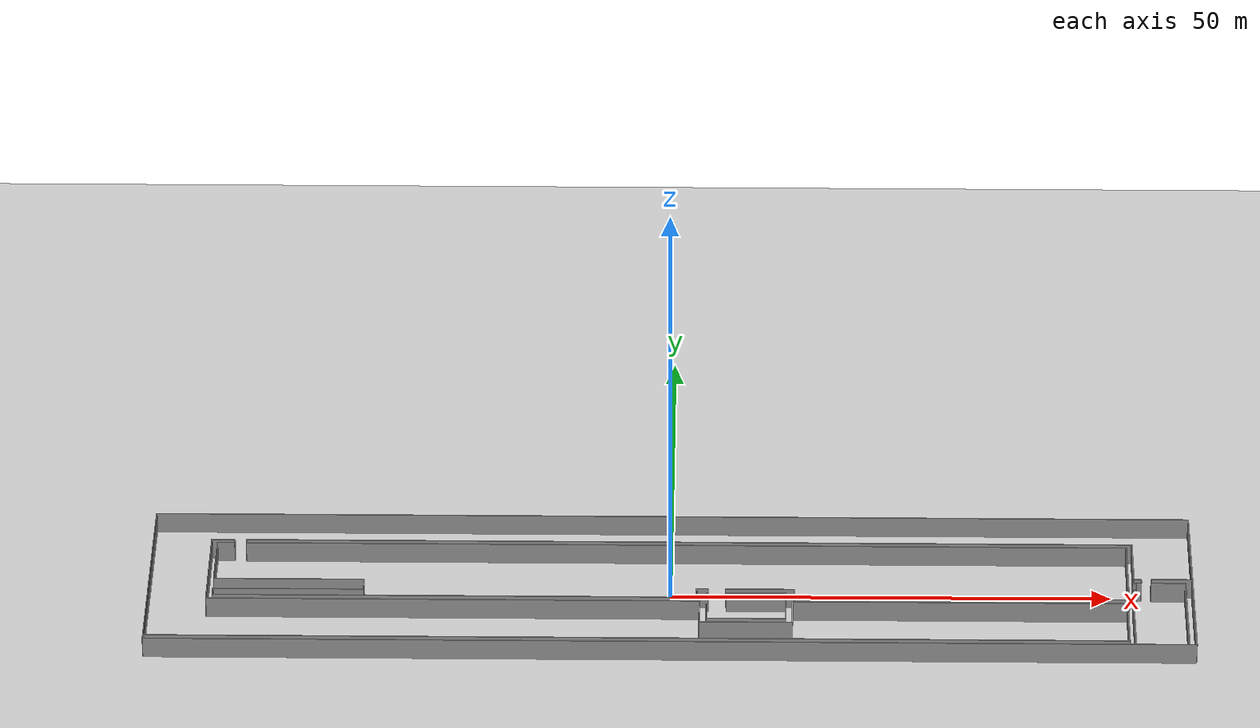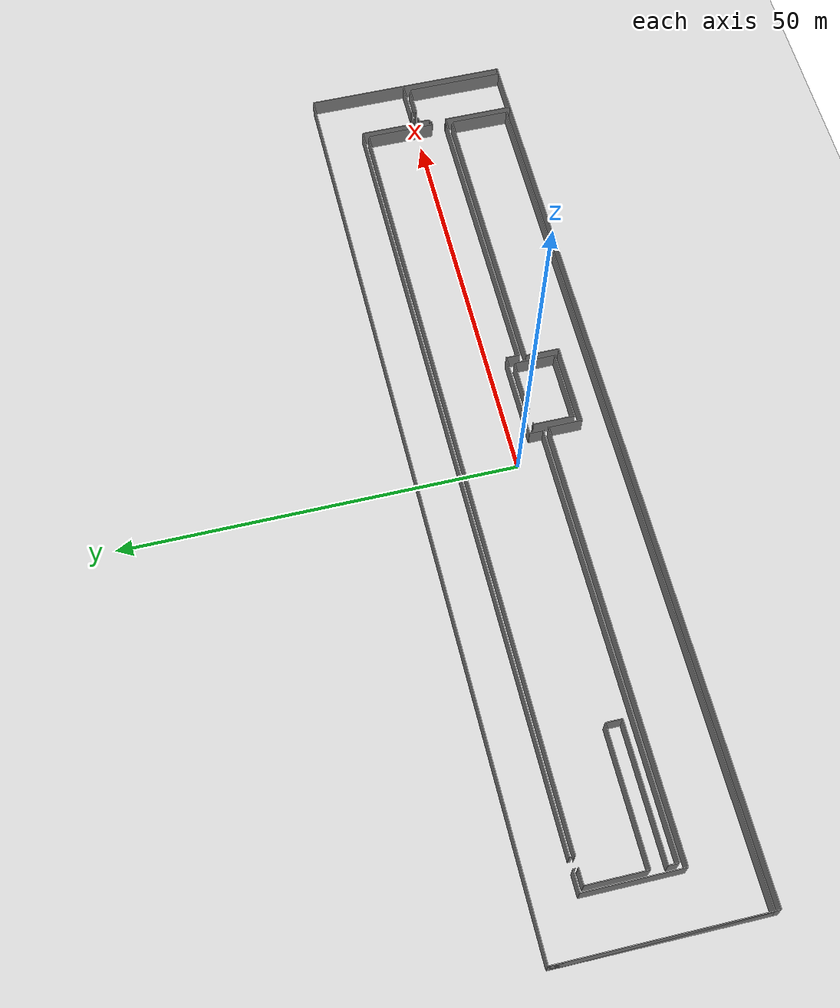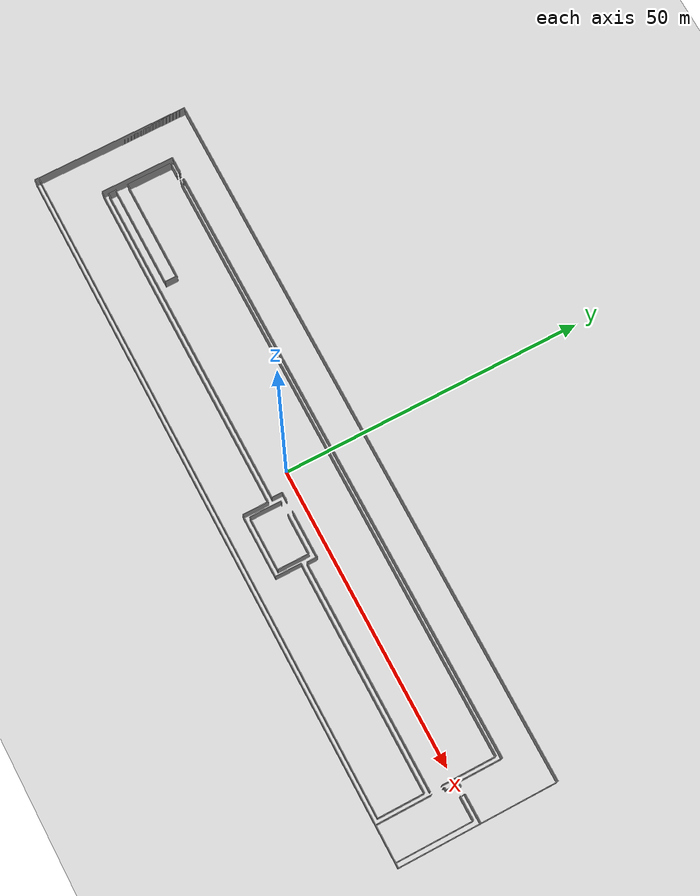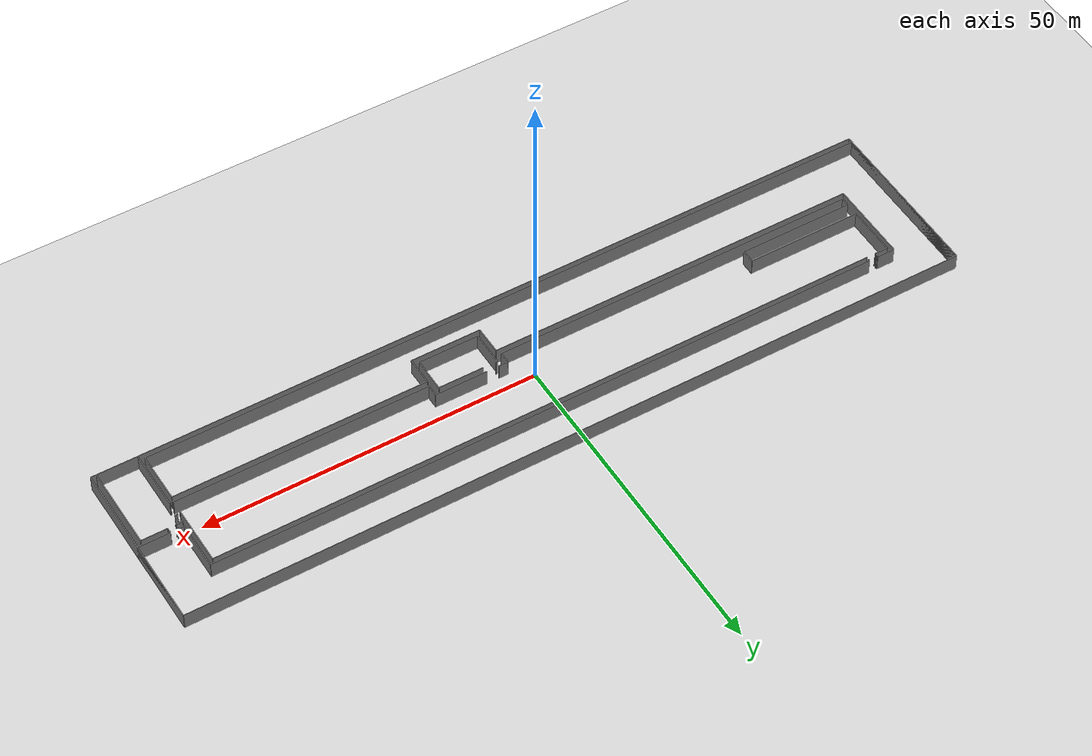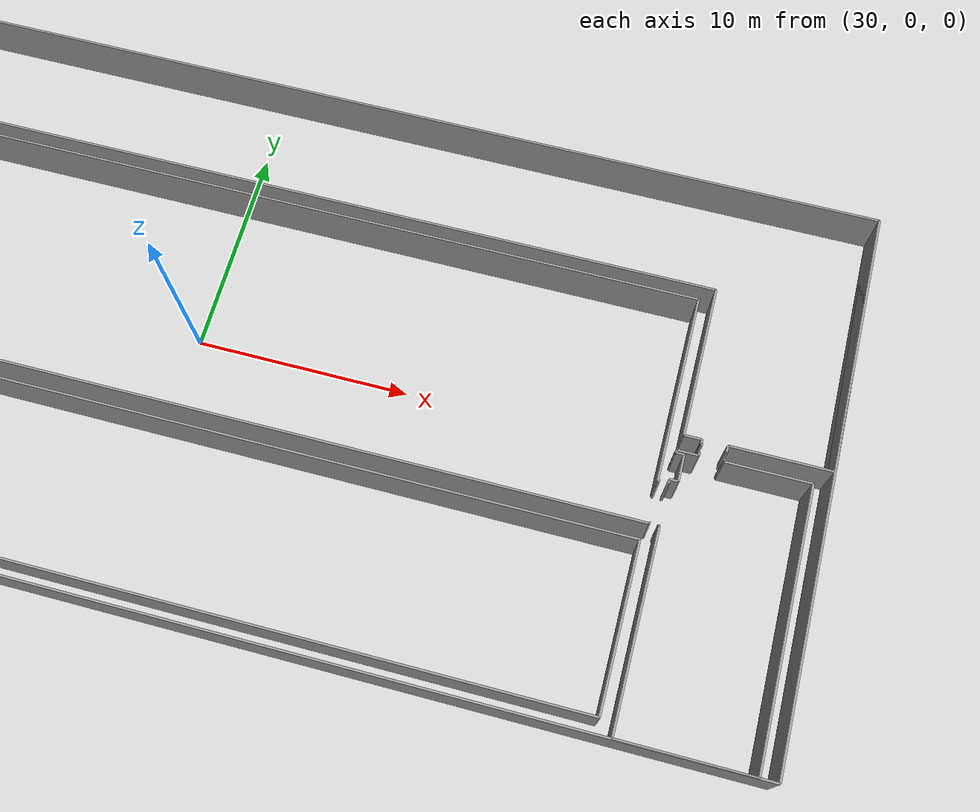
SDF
<sdf version="1.6">
  <world name="default">
    <light name="sun" type="directional">
      <cast_shadows>1</cast_shadows>
      <pose frame="">0 0 10 0 -0 0</pose>
      <diffuse>0.8 0.8 0.8 1</diffuse>
      <specular>0.1 0.1 0.1 1</specular>
      <attenuation>
        <range>1000</range>
        <constant>0.9</constant>
        <linear>0.01</linear>
        <quadratic>0.001</quadratic>
      </attenuation>
      <direction>-0.5 0.5 -1</direction>
    </light>
    <model name="ground_plane">
      <static>1</static>
      <link name="link">
        <collision name="collision">
          <geometry>
            <plane>
              <normal>0 0 1</normal>
              <size>100 100</size>
            </plane>
          </geometry>
          <surface>
            <friction>
              <ode>
                <mu>100</mu>
                <mu2>50</mu2>
              </ode>
              <torsional>
                <ode />
              </torsional>
            </friction>
            <contact>
              <ode />
            </contact>
            <bounce />
          </surface>
          <max_contacts>10</max_contacts>
        </collision>
        <visual name="visual">
          <cast_shadows>0</cast_shadows>
          <geometry>
            <plane>
              <normal>0 0 1</normal>
              <size>100 100</size>
            </plane>
          </geometry>
          <material>
            <script>
              <uri>file://media/materials/scripts/gazebo.material</uri>
              <name>Gazebo/Grey</name>
            </script>
          </material>
        </visual>
        <self_collide>0</self_collide>
        <kinematic>0</kinematic>
        <gravity>1</gravity>
      </link>
    </model>
    <gravity>0 0 -9.8</gravity>
    <magnetic_field>6e-06 2.3e-05 -4.2e-05</magnetic_field>
    <atmosphere type="adiabatic" />
    <physics default="0" name="default_physics" type="ode">
      <max_step_size>0.001</max_step_size>
      <real_time_factor>1</real_time_factor>
      <real_time_update_rate>1000</real_time_update_rate>
    </physics>
    <scene>
      <ambient>0.4 0.4 0.4 1</ambient>
      <background>0.7 0.7 0.7 1</background>
      <shadows>1</shadows>
    </scene>
    <spherical_coordinates>
      <surface_model>EARTH_WGS84</surface_model>
      <latitude_deg>0</latitude_deg>
      <longitude_deg>0</longitude_deg>
      <elevation>0</elevation>
      <heading_deg>0</heading_deg>
    </spherical_coordinates>
  <model name="0510040985_A-40">
		<static>1</static>
		<link name="Wall_0">
			<collision name="Wall_0_Collision">
				<geometry>
					<box>
						<size>5.21940979115 0.1 2.5</size>
					</box>
				</geometry>
				<pose frame="">2.60970489558 0 1.25 0 0 0</pose>
			</collision>
			<visual name="Wall_0_Visual">
				<pose frame="">2.60970489558 0 1.25 0 0 0</pose>
				<geometry>
					<box>
						<size>5.21940979115 0.1 2.5</size>
					</box>
				</geometry>
				<material>
					<script>
						<uri>file://media/materials/scripts/gazebo.material</uri>
						<name>Gazebo/Grey</name>
					</script>
					<ambient>1 1 1 1</ambient>
				</material>
			</visual>
			<pose frame="">63.2506516652 -21.1559366537 0 0 0 1.57079632679</pose>
		</link>
		<link name="Wall_1">
			<collision name="Wall_1_Collision">
				<geometry>
					<box>
						<size>0.26992573237 0.1 2.5</size>
					</box>
				</geometry>
				<pose frame="">0.134962866185 0 1.25 0 0 0</pose>
			</collision>
			<visual name="Wall_1_Visual">
				<pose frame="">0.134962866185 0 1.25 0 0 0</pose>
				<geometry>
					<box>
						<size>0.26992573237 0.1 2.5</size>
					</box>
				</geometry>
				<material>
					<script>
						<uri>file://media/materials/scripts/gazebo.material</uri>
						<name>Gazebo/Grey</name>
					</script>
					<ambient>1 1 1 1</ambient>
				</material>
			</visual>
			<pose frame="">63.2506516652 -15.9365268626 0 0 0 0.0</pose>
		</link>
		<link name="Wall_2">
			<collision name="Wall_2_Collision">
				<geometry>
					<box>
						<size>6.76932639069 0.1 2.5</size>
					</box>
				</geometry>
				<pose frame="">3.38466319535 0 1.25 0 0 0</pose>
			</collision>
			<visual name="Wall_2_Visual">
				<pose frame="">3.38466319535 0 1.25 0 0 0</pose>
				<geometry>
					<box>
						<size>6.76932639069 0.1 2.5</size>
					</box>
				</geometry>
				<material>
					<script>
						<uri>file://media/materials/scripts/gazebo.material</uri>
						<name>Gazebo/Grey</name>
					</script>
					<ambient>1 1 1 1</ambient>
				</material>
			</visual>
			<pose frame="">65.4661229253 -15.9365268626 0 0 0 0.0</pose>
		</link>
		<link name="Wall_3">
			<collision name="Wall_3_Collision">
				<geometry>
					<box>
						<size>5.22359566952 0.1 2.5</size>
					</box>
				</geometry>
				<pose frame="">2.61179783476 0 1.25 0 0 0</pose>
			</collision>
			<visual name="Wall_3_Visual">
				<pose frame="">2.61179783476 0 1.25 0 0 0</pose>
				<geometry>
					<box>
						<size>5.22359566952 0.1 2.5</size>
					</box>
				</geometry>
				<material>
					<script>
						<uri>file://media/materials/scripts/gazebo.material</uri>
						<name>Gazebo/Grey</name>
					</script>
					<ambient>1 1 1 1</ambient>
				</material>
			</visual>
			<pose frame="">72.235449316 -15.9365268626 0 0 0 -1.57079632679</pose>
		</link>
		<link name="Wall_4">
			<collision name="Wall_4_Collision">
				<geometry>
					<box>
						<size>8.9847986259 0.1 2.5</size>
					</box>
				</geometry>
				<pose frame="">4.49239931295 0 1.25 0 0 0</pose>
			</collision>
			<visual name="Wall_4_Visual">
				<pose frame="">4.49239931295 0 1.25 0 0 0</pose>
				<geometry>
					<box>
						<size>8.9847986259 0.1 2.5</size>
					</box>
				</geometry>
				<material>
					<script>
						<uri>file://media/materials/scripts/gazebo.material</uri>
						<name>Gazebo/Grey</name>
					</script>
					<ambient>1 1 1 1</ambient>
				</material>
			</visual>
			<pose frame="">72.235449316 -21.1601225321 0 0 0 3.14112676908</pose>
		</link>
		<link name="Wall_5">
			<collision name="Wall_5_Collision">
				<geometry>
					<box>
						<size>1.26134468171 0.1 2.5</size>
					</box>
				</geometry>
				<pose frame="">0.630672340857 0 1.25 0 0 0</pose>
			</collision>
			<visual name="Wall_5_Visual">
				<pose frame="">0.630672340857 0 1.25 0 0 0</pose>
				<geometry>
					<box>
						<size>1.26134468171 0.1 2.5</size>
					</box>
				</geometry>
				<material>
					<script>
						<uri>file://media/materials/scripts/gazebo.material</uri>
						<name>Gazebo/Grey</name>
					</script>
					<ambient>1 1 1 1</ambient>
				</material>
			</visual>
			<pose frame="">7.31463218179 -16.86287443 0 0 0 1.57079632679</pose>
		</link>
		<link name="Wall_6">
			<collision name="Wall_6_Collision">
				<geometry>
					<box>
						<size>17.07749583 0.1 2.5</size>
					</box>
				</geometry>
				<pose frame="">8.53874791499 0 1.25 0 0 0</pose>
			</collision>
			<visual name="Wall_6_Visual">
				<pose frame="">8.53874791499 0 1.25 0 0 0</pose>
				<geometry>
					<box>
						<size>17.07749583 0.1 2.5</size>
					</box>
				</geometry>
				<material>
					<script>
						<uri>file://media/materials/scripts/gazebo.material</uri>
						<name>Gazebo/Grey</name>
					</script>
					<ambient>1 1 1 1</ambient>
				</material>
			</visual>
			<pose frame="">7.31463218179 -15.6015297483 0 0 0 0.0</pose>
		</link>
		<link name="Wall_7">
			<collision name="Wall_7_Collision">
				<geometry>
					<box>
						<size>2.03141945672 0.1 2.5</size>
					</box>
				</geometry>
				<pose frame="">1.01570972836 0 1.25 0 0 0</pose>
			</collision>
			<visual name="Wall_7_Visual">
				<pose frame="">1.01570972836 0 1.25 0 0 0</pose>
				<geometry>
					<box>
						<size>2.03141945672 0.1 2.5</size>
					</box>
				</geometry>
				<material>
					<script>
						<uri>file://media/materials/scripts/gazebo.material</uri>
						<name>Gazebo/Grey</name>
					</script>
					<ambient>1 1 1 1</ambient>
				</material>
			</visual>
			<pose frame="">24.3921280118 -15.6015297483 0 0 0 1.57079632679</pose>
		</link>
		<link name="Wall_8">
			<collision name="Wall_8_Collision">
				<geometry>
					<box>
						<size>17.0872628795 0.1 2.5</size>
					</box>
				</geometry>
				<pose frame="">8.54363143975 0 1.25 0 0 0</pose>
			</collision>
			<visual name="Wall_8_Visual">
				<pose frame="">8.54363143975 0 1.25 0 0 0</pose>
				<geometry>
					<box>
						<size>17.0872628795 0.1 2.5</size>
					</box>
				</geometry>
				<material>
					<script>
						<uri>file://media/materials/scripts/gazebo.material</uri>
						<name>Gazebo/Grey</name>
					</script>
					<ambient>1 1 1 1</ambient>
				</material>
			</visual>
			<pose frame="">24.3921280118 -13.5701102916 0 0 0 3.14159265359</pose>
		</link>
		<link name="Wall_9">
			<collision name="Wall_9_Collision">
				<geometry>
					<box>
						<size>7.52151604904 0.1 2.5</size>
					</box>
				</geometry>
				<pose frame="">3.76075802452 0 1.25 0 0 0</pose>
			</collision>
			<visual name="Wall_9_Visual">
				<pose frame="">3.76075802452 0 1.25 0 0 0</pose>
				<geometry>
					<box>
						<size>7.52151604904 0.1 2.5</size>
					</box>
				</geometry>
				<material>
					<script>
						<uri>file://media/materials/scripts/gazebo.material</uri>
						<name>Gazebo/Grey</name>
					</script>
					<ambient>1 1 1 1</ambient>
				</material>
			</visual>
			<pose frame="">7.30486513227 -13.5701102916 0 0 0 1.57079632679</pose>
		</link>
		<link name="Wall_10">
			<collision name="Wall_10_Collision">
				<geometry>
					<box>
						<size>1.97230978037 0.1 2.5</size>
					</box>
				</geometry>
				<pose frame="">0.986154890184 0 1.25 0 0 0</pose>
			</collision>
			<visual name="Wall_10_Visual">
				<pose frame="">0.986154890184 0 1.25 0 0 0</pose>
				<geometry>
					<box>
						<size>1.97230978037 0.1 2.5</size>
					</box>
				</geometry>
				<material>
					<script>
						<uri>file://media/materials/scripts/gazebo.material</uri>
						<name>Gazebo/Grey</name>
					</script>
					<ambient>1 1 1 1</ambient>
				</material>
			</visual>
			<pose frame="">7.30486513227 -6.04859424251 0 0 0 0.0</pose>
		</link>
		<link name="Wall_11">
			<collision name="Wall_11_Collision">
				<geometry>
					<box>
						<size>0.0684961914849 0.1 2.5</size>
					</box>
				</geometry>
				<pose frame="">0.0342480957425 0 1.25 0 0 0</pose>
			</collision>
			<visual name="Wall_11_Visual">
				<pose frame="">0.0342480957425 0 1.25 0 0 0</pose>
				<geometry>
					<box>
						<size>0.0684961914849 0.1 2.5</size>
					</box>
				</geometry>
				<material>
					<script>
						<uri>file://media/materials/scripts/gazebo.material</uri>
						<name>Gazebo/Grey</name>
					</script>
					<ambient>1 1 1 1</ambient>
				</material>
			</visual>
			<pose frame="">9.27717491264 -6.04859424251 0 0 0 1.57079632679</pose>
		</link>
		<link name="Wall_12">
			<collision name="Wall_12_Collision">
				<geometry>
					<box>
						<size>0.0777558618153 0.1 2.5</size>
					</box>
				</geometry>
				<pose frame="">0.0388779309076 0 1.25 0 0 0</pose>
			</collision>
			<visual name="Wall_12_Visual">
				<pose frame="">0.0388779309076 0 1.25 0 0 0</pose>
				<geometry>
					<box>
						<size>0.0777558618153 0.1 2.5</size>
					</box>
				</geometry>
				<material>
					<script>
						<uri>file://media/materials/scripts/gazebo.material</uri>
						<name>Gazebo/Grey</name>
					</script>
					<ambient>1 1 1 1</ambient>
				</material>
			</visual>
			<pose frame="">10.6205881793 -5.98009805103 0 0 0 -1.57079632679</pose>
		</link>
		<link name="Wall_13">
			<collision name="Wall_13_Collision">
				<geometry>
					<box>
						<size>100.46412512 0.1 2.5</size>
					</box>
				</geometry>
				<pose frame="">50.2320625599 0 1.25 0 0 0</pose>
			</collision>
			<visual name="Wall_13_Visual">
				<pose frame="">50.2320625599 0 1.25 0 0 0</pose>
				<geometry>
					<box>
						<size>100.46412512 0.1 2.5</size>
					</box>
				</geometry>
				<material>
					<script>
						<uri>file://media/materials/scripts/gazebo.material</uri>
						<name>Gazebo/Grey</name>
					</script>
					<ambient>1 1 1 1</ambient>
				</material>
			</visual>
			<pose frame="">10.6205881793 -6.05785391284 0 0 0 0.0</pose>
		</link>
		<link name="Wall_14">
			<collision name="Wall_14_Collision">
				<geometry>
					<box>
						<size>8.87254000368 0.1 2.5</size>
					</box>
				</geometry>
				<pose frame="">4.43627000184 0 1.25 0 0 0</pose>
			</collision>
			<visual name="Wall_14_Visual">
				<pose frame="">4.43627000184 0 1.25 0 0 0</pose>
				<geometry>
					<box>
						<size>8.87254000368 0.1 2.5</size>
					</box>
				</geometry>
				<material>
					<script>
						<uri>file://media/materials/scripts/gazebo.material</uri>
						<name>Gazebo/Grey</name>
					</script>
					<ambient>1 1 1 1</ambient>
				</material>
			</visual>
			<pose frame="">111.084713299 -6.05785391284 0 0 0 -1.57079632679</pose>
		</link>
		<link name="Wall_15">
			<collision name="Wall_15_Collision">
				<geometry>
					<box>
						<size>0.0928503929018 0.1 2.5</size>
					</box>
				</geometry>
				<pose frame="">0.0464251964509 0 1.25 0 0 0</pose>
			</collision>
			<visual name="Wall_15_Visual">
				<pose frame="">0.0464251964509 0 1.25 0 0 0</pose>
				<geometry>
					<box>
						<size>0.0928503929018 0.1 2.5</size>
					</box>
				</geometry>
				<material>
					<script>
						<uri>file://media/materials/scripts/gazebo.material</uri>
						<name>Gazebo/Grey</name>
					</script>
					<ambient>1 1 1 1</ambient>
				</material>
			</visual>
			<pose frame="">111.084713299 -14.9303939165 0 0 0 0.0</pose>
		</link>
		<link name="Wall_16">
			<collision name="Wall_16_Collision">
				<geometry>
					<box>
						<size>0.0663398299011 0.1 2.5</size>
					</box>
				</geometry>
				<pose frame="">0.0331699149506 0 1.25 0 0 0</pose>
			</collision>
			<visual name="Wall_16_Visual">
				<pose frame="">0.0331699149506 0 1.25 0 0 0</pose>
				<geometry>
					<box>
						<size>0.0663398299011 0.1 2.5</size>
					</box>
				</geometry>
				<material>
					<script>
						<uri>file://media/materials/scripts/gazebo.material</uri>
						<name>Gazebo/Grey</name>
					</script>
					<ambient>1 1 1 1</ambient>
				</material>
			</visual>
			<pose frame="">111.177563692 -16.8404229006 0 0 0 3.14159265359</pose>
		</link>
		<link name="Wall_17">
			<collision name="Wall_17_Collision">
				<geometry>
					<box>
						<size>0.030189062173 0.1 2.5</size>
					</box>
				</geometry>
				<pose frame="">0.0150945310865 0 1.25 0 0 0</pose>
			</collision>
			<visual name="Wall_17_Visual">
				<pose frame="">0.0150945310865 0 1.25 0 0 0</pose>
				<geometry>
					<box>
						<size>0.030189062173 0.1 2.5</size>
					</box>
				</geometry>
				<material>
					<script>
						<uri>file://media/materials/scripts/gazebo.material</uri>
						<name>Gazebo/Grey</name>
					</script>
					<ambient>1 1 1 1</ambient>
				</material>
			</visual>
			<pose frame="">111.111223862 -16.8404229006 0 0 0 -1.57079632679</pose>
		</link>
		<link name="Wall_18">
			<collision name="Wall_18_Collision">
				<geometry>
					<box>
						<size>37.8781402016 0.1 2.5</size>
					</box>
				</geometry>
				<pose frame="">18.9390701008 0 1.25 0 0 0</pose>
			</collision>
			<visual name="Wall_18_Visual">
				<pose frame="">18.9390701008 0 1.25 0 0 0</pose>
				<geometry>
					<box>
						<size>37.8781402016 0.1 2.5</size>
					</box>
				</geometry>
				<material>
					<script>
						<uri>file://media/materials/scripts/gazebo.material</uri>
						<name>Gazebo/Grey</name>
					</script>
					<ambient>1 1 1 1</ambient>
				</material>
			</visual>
			<pose frame="">111.111223862 -16.8706119627 0 0 0 3.14159265359</pose>
		</link>
		<link name="Wall_19">
			<collision name="Wall_19_Collision">
				<geometry>
					<box>
						<size>1.74995084764 0.1 2.5</size>
					</box>
				</geometry>
				<pose frame="">0.87497542382 0 1.25 0 0 0</pose>
			</collision>
			<visual name="Wall_19_Visual">
				<pose frame="">0.87497542382 0 1.25 0 0 0</pose>
				<geometry>
					<box>
						<size>1.74995084764 0.1 2.5</size>
					</box>
				</geometry>
				<material>
					<script>
						<uri>file://media/materials/scripts/gazebo.material</uri>
						<name>Gazebo/Grey</name>
					</script>
					<ambient>1 1 1 1</ambient>
				</material>
			</visual>
			<pose frame="">73.2330836605 -16.8706119627 0 0 0 1.57079632679</pose>
		</link>
		<link name="Wall_20">
			<collision name="Wall_20_Collision">
				<geometry>
					<box>
						<size>7.82886099713 0.1 2.5</size>
					</box>
				</geometry>
				<pose frame="">3.91443049856 0 1.25 0 0 0</pose>
			</collision>
			<visual name="Wall_20_Visual">
				<pose frame="">3.91443049856 0 1.25 0 0 0</pose>
				<geometry>
					<box>
						<size>7.82886099713 0.1 2.5</size>
					</box>
				</geometry>
				<material>
					<script>
						<uri>file://media/materials/scripts/gazebo.material</uri>
						<name>Gazebo/Grey</name>
					</script>
					<ambient>1 1 1 1</ambient>
				</material>
			</visual>
			<pose frame="">73.2330836605 -15.1206611151 0 0 0 3.14159265359</pose>
		</link>
		<link name="Wall_21">
			<collision name="Wall_21_Collision">
				<geometry>
					<box>
						<size>1.39237535913 0.1 2.5</size>
					</box>
				</geometry>
				<pose frame="">0.696187679565 0 1.25 0 0 0</pose>
			</collision>
			<visual name="Wall_21_Visual">
				<pose frame="">0.696187679565 0 1.25 0 0 0</pose>
				<geometry>
					<box>
						<size>1.39237535913 0.1 2.5</size>
					</box>
				</geometry>
				<material>
					<script>
						<uri>file://media/materials/scripts/gazebo.material</uri>
						<name>Gazebo/Grey</name>
					</script>
					<ambient>1 1 1 1</ambient>
				</material>
			</visual>
			<pose frame="">63.5371940662 -15.1206611151 0 0 0 3.14159265359</pose>
		</link>
		<link name="Wall_22">
			<collision name="Wall_22_Collision">
				<geometry>
					<box>
						<size>1.74094486691 0.1 2.5</size>
					</box>
				</geometry>
				<pose frame="">0.870472433454 0 1.25 0 0 0</pose>
			</collision>
			<visual name="Wall_22_Visual">
				<pose frame="">0.870472433454 0 1.25 0 0 0</pose>
				<geometry>
					<box>
						<size>1.74094486691 0.1 2.5</size>
					</box>
				</geometry>
				<material>
					<script>
						<uri>file://media/materials/scripts/gazebo.material</uri>
						<name>Gazebo/Grey</name>
					</script>
					<ambient>1 1 1 1</ambient>
				</material>
			</visual>
			<pose frame="">62.1448187071 -15.1206611151 0 0 0 -1.57079632679</pose>
		</link>
		<link name="Wall_23">
			<collision name="Wall_23_Collision">
				<geometry>
					<box>
						<size>54.8301865399 0.1 2.5</size>
					</box>
				</geometry>
				<pose frame="">27.41509327 0 1.25 0 0 0</pose>
			</collision>
			<visual name="Wall_23_Visual">
				<pose frame="">27.41509327 0 1.25 0 0 0</pose>
				<geometry>
					<box>
						<size>54.8301865399 0.1 2.5</size>
					</box>
				</geometry>
				<material>
					<script>
						<uri>file://media/materials/scripts/gazebo.material</uri>
						<name>Gazebo/Grey</name>
					</script>
					<ambient>1 1 1 1</ambient>
				</material>
			</visual>
			<pose frame="">62.1448187071 -16.861605982 0 0 0 -3.14156951947</pose>
		</link>
		<link name="Wall_24">
			<collision name="Wall_24_Collision">
				<geometry>
					<box>
						<size>9.08411712849 0.1 2.5</size>
					</box>
				</geometry>
				<pose frame="">4.54205856424 0 1.25 0 0 0</pose>
			</collision>
			<visual name="Wall_24_Visual">
				<pose frame="">4.54205856424 0 1.25 0 0 0</pose>
				<geometry>
					<box>
						<size>9.08411712849 0.1 2.5</size>
					</box>
				</geometry>
				<material>
					<script>
						<uri>file://media/materials/scripts/gazebo.material</uri>
						<name>Gazebo/Grey</name>
					</script>
					<ambient>1 1 1 1</ambient>
				</material>
			</visual>
			<pose frame="">111.57978855 -25.9497821441 0 0 0 1.57079632679</pose>
		</link>
		<link name="Wall_25">
			<collision name="Wall_25_Collision">
				<geometry>
					<box>
						<size>0.0912014105142 0.1 2.5</size>
					</box>
				</geometry>
				<pose frame="">0.0456007052571 0 1.25 0 0 0</pose>
			</collision>
			<visual name="Wall_25_Visual">
				<pose frame="">0.0456007052571 0 1.25 0 0 0</pose>
				<geometry>
					<box>
						<size>0.0912014105142 0.1 2.5</size>
					</box>
				</geometry>
				<material>
					<script>
						<uri>file://media/materials/scripts/gazebo.material</uri>
						<name>Gazebo/Grey</name>
					</script>
					<ambient>1 1 1 1</ambient>
				</material>
			</visual>
			<pose frame="">111.57978855 -16.8656650156 0 0 0 3.14159265359</pose>
		</link>
		<link name="Wall_26">
			<collision name="Wall_26_Collision">
				<geometry>
					<box>
						<size>0.0792779994038 0.1 2.5</size>
					</box>
				</geometry>
				<pose frame="">0.0396389997019 0 1.25 0 0 0</pose>
			</collision>
			<visual name="Wall_26_Visual">
				<pose frame="">0.0396389997019 0 1.25 0 0 0</pose>
				<geometry>
					<box>
						<size>0.0792779994038 0.1 2.5</size>
					</box>
				</geometry>
				<material>
					<script>
						<uri>file://media/materials/scripts/gazebo.material</uri>
						<name>Gazebo/Grey</name>
					</script>
					<ambient>1 1 1 1</ambient>
				</material>
			</visual>
			<pose frame="">111.488587139 -14.9402878108 0 0 0 0.0</pose>
		</link>
		<link name="Wall_27">
			<collision name="Wall_27_Collision">
				<geometry>
					<box>
						<size>0.207644936039 0.1 2.5</size>
					</box>
				</geometry>
				<pose frame="">0.103822468019 0 1.25 0 0 0</pose>
			</collision>
			<visual name="Wall_27_Visual">
				<pose frame="">0.103822468019 0 1.25 0 0 0</pose>
				<geometry>
					<box>
						<size>0.207644936039 0.1 2.5</size>
					</box>
				</geometry>
				<material>
					<script>
						<uri>file://media/materials/scripts/gazebo.material</uri>
						<name>Gazebo/Grey</name>
					</script>
					<ambient>1 1 1 1</ambient>
				</material>
			</visual>
			<pose frame="">111.567865139 -14.9402878108 0 0 0 1.57079632679</pose>
		</link>
		<link name="Wall_28">
			<collision name="Wall_28_Collision">
				<geometry>
					<box>
						<size>0.384847120306 0.1 2.5</size>
					</box>
				</geometry>
				<pose frame="">0.192423560153 0 1.25 0 0 0</pose>
			</collision>
			<visual name="Wall_28_Visual">
				<pose frame="">0.192423560153 0 1.25 0 0 0</pose>
				<geometry>
					<box>
						<size>0.384847120306 0.1 2.5</size>
					</box>
				</geometry>
				<material>
					<script>
						<uri>file://media/materials/scripts/gazebo.material</uri>
						<name>Gazebo/Grey</name>
					</script>
					<ambient>1 1 1 1</ambient>
				</material>
			</visual>
			<pose frame="">111.567865139 -14.7326428748 0 0 0 0.0</pose>
		</link>
		<link name="Wall_29">
			<collision name="Wall_29_Collision">
				<geometry>
					<box>
						<size>1.24789913302 0.1 2.5</size>
					</box>
				</geometry>
				<pose frame="">0.623949566508 0 1.25 0 0 0</pose>
			</collision>
			<visual name="Wall_29_Visual">
				<pose frame="">0.623949566508 0 1.25 0 0 0</pose>
				<geometry>
					<box>
						<size>1.24789913302 0.1 2.5</size>
					</box>
				</geometry>
				<material>
					<script>
						<uri>file://media/materials/scripts/gazebo.material</uri>
						<name>Gazebo/Grey</name>
					</script>
					<ambient>1 1 1 1</ambient>
				</material>
			</visual>
			<pose frame="">111.952712259 -14.7326428748 0 0 0 1.57079632679</pose>
		</link>
		<link name="Wall_30">
			<collision name="Wall_30_Collision">
				<geometry>
					<box>
						<size>0.374699536382 0.1 2.5</size>
					</box>
				</geometry>
				<pose frame="">0.187349768191 0 1.25 0 0 0</pose>
			</collision>
			<visual name="Wall_30_Visual">
				<pose frame="">0.187349768191 0 1.25 0 0 0</pose>
				<geometry>
					<box>
						<size>0.374699536382 0.1 2.5</size>
					</box>
				</geometry>
				<material>
					<script>
						<uri>file://media/materials/scripts/gazebo.material</uri>
						<name>Gazebo/Grey</name>
					</script>
					<ambient>1 1 1 1</ambient>
				</material>
			</visual>
			<pose frame="">111.952712259 -13.4847437418 0 0 0 3.14159265359</pose>
		</link>
		<link name="Wall_31">
			<collision name="Wall_31_Collision">
				<geometry>
					<box>
						<size>0.128113247037 0.1 2.5</size>
					</box>
				</geometry>
				<pose frame="">0.0640566235183 0 1.25 0 0 0</pose>
			</collision>
			<visual name="Wall_31_Visual">
				<pose frame="">0.0640566235183 0 1.25 0 0 0</pose>
				<geometry>
					<box>
						<size>0.128113247037 0.1 2.5</size>
					</box>
				</geometry>
				<material>
					<script>
						<uri>file://media/materials/scripts/gazebo.material</uri>
						<name>Gazebo/Grey</name>
					</script>
					<ambient>1 1 1 1</ambient>
				</material>
			</visual>
			<pose frame="">111.578012723 -13.4847437418 0 0 0 1.57079632679</pose>
		</link>
		<link name="Wall_32">
			<collision name="Wall_32_Collision">
				<geometry>
					<box>
						<size>0.984823019794 0.1 2.5</size>
					</box>
				</geometry>
				<pose frame="">0.492411509897 0 1.25 0 0 0</pose>
			</collision>
			<visual name="Wall_32_Visual">
				<pose frame="">0.492411509897 0 1.25 0 0 0</pose>
				<geometry>
					<box>
						<size>0.984823019794 0.1 2.5</size>
					</box>
				</geometry>
				<material>
					<script>
						<uri>file://media/materials/scripts/gazebo.material</uri>
						<name>Gazebo/Grey</name>
					</script>
					<ambient>1 1 1 1</ambient>
				</material>
			</visual>
			<pose frame="">111.578012723 -13.3566304948 0 0 0 0.0</pose>
		</link>
		<link name="Wall_33">
			<collision name="Wall_33_Collision">
				<geometry>
					<box>
						<size>0.136358158975 0.1 2.5</size>
					</box>
				</geometry>
				<pose frame="">0.0681790794873 0 1.25 0 0 0</pose>
			</collision>
			<visual name="Wall_33_Visual">
				<pose frame="">0.0681790794873 0 1.25 0 0 0</pose>
				<geometry>
					<box>
						<size>0.136358158975 0.1 2.5</size>
					</box>
				</geometry>
				<material>
					<script>
						<uri>file://media/materials/scripts/gazebo.material</uri>
						<name>Gazebo/Grey</name>
					</script>
					<ambient>1 1 1 1</ambient>
				</material>
			</visual>
			<pose frame="">112.562835742 -13.3566304948 0 0 0 1.57079632679</pose>
		</link>
		<link name="Wall_34">
			<collision name="Wall_34_Collision">
				<geometry>
					<box>
						<size>0.141305106137 0.1 2.5</size>
					</box>
				</geometry>
				<pose frame="">0.0706525530687 0 1.25 0 0 0</pose>
			</collision>
			<visual name="Wall_34_Visual">
				<pose frame="">0.0706525530687 0 1.25 0 0 0</pose>
				<geometry>
					<box>
						<size>0.141305106137 0.1 2.5</size>
					</box>
				</geometry>
				<material>
					<script>
						<uri>file://media/materials/scripts/gazebo.material</uri>
						<name>Gazebo/Grey</name>
					</script>
					<ambient>1 1 1 1</ambient>
				</material>
			</visual>
			<pose frame="">113.695559798 -13.2202723358 0 0 0 -1.57079632679</pose>
		</link>
		<link name="Wall_35">
			<collision name="Wall_35_Collision">
				<geometry>
					<box>
						<size>3.88145085081 0.1 2.5</size>
					</box>
				</geometry>
				<pose frame="">1.94072542541 0 1.25 0 0 0</pose>
			</collision>
			<visual name="Wall_35_Visual">
				<pose frame="">1.94072542541 0 1.25 0 0 0</pose>
				<geometry>
					<box>
						<size>3.88145085081 0.1 2.5</size>
					</box>
				</geometry>
				<material>
					<script>
						<uri>file://media/materials/scripts/gazebo.material</uri>
						<name>Gazebo/Grey</name>
					</script>
					<ambient>1 1 1 1</ambient>
				</material>
			</visual>
			<pose frame="">113.695559798 -13.3615774419 0 0 0 0.0</pose>
		</link>
		<link name="Wall_36">
			<collision name="Wall_36_Collision">
				<geometry>
					<box>
						<size>12.6026650092 0.1 2.5</size>
					</box>
				</geometry>
				<pose frame="">6.30133250461 0 1.25 0 0 0</pose>
			</collision>
			<visual name="Wall_36_Visual">
				<pose frame="">6.30133250461 0 1.25 0 0 0</pose>
				<geometry>
					<box>
						<size>12.6026650092 0.1 2.5</size>
					</box>
				</geometry>
				<material>
					<script>
						<uri>file://media/materials/scripts/gazebo.material</uri>
						<name>Gazebo/Grey</name>
					</script>
					<ambient>1 1 1 1</ambient>
				</material>
			</visual>
			<pose frame="">117.577010649 -13.3615774419 0 0 0 -1.57079632679</pose>
		</link>
		<link name="Wall_37">
			<collision name="Wall_37_Collision">
				<geometry>
					<box>
						<size>5.99723953199 0.1 2.5</size>
					</box>
				</geometry>
				<pose frame="">2.99861976599 0 1.25 0 0 0</pose>
			</collision>
			<visual name="Wall_37_Visual">
				<pose frame="">2.99861976599 0 1.25 0 0 0</pose>
				<geometry>
					<box>
						<size>5.99723953199 0.1 2.5</size>
					</box>
				</geometry>
				<material>
					<script>
						<uri>file://media/materials/scripts/gazebo.material</uri>
						<name>Gazebo/Grey</name>
					</script>
					<ambient>1 1 1 1</ambient>
				</material>
			</visual>
			<pose frame="">117.577010649 -25.9642424511 0 0 0 3.13918149075</pose>
		</link>
		<link name="Wall_38">
			<collision name="Wall_38_Collision">
				<geometry>
					<box>
						<size>110.903578926 0.1 2.5</size>
					</box>
				</geometry>
				<pose frame="">55.451789463 0 1.25 0 0 0</pose>
			</collision>
			<visual name="Wall_38_Visual">
				<pose frame="">55.451789463 0 1.25 0 0 0</pose>
				<geometry>
					<box>
						<size>110.903578926 0.1 2.5</size>
					</box>
				</geometry>
				<material>
					<script>
						<uri>file://media/materials/scripts/gazebo.material</uri>
						<name>Gazebo/Grey</name>
					</script>
					<ambient>1 1 1 1</ambient>
				</material>
			</visual>
			<pose frame="">110.903578926 -25.2715430036 0 0 0 3.14159265359</pose>
		</link>
		<link name="Wall_39">
			<collision name="Wall_39_Collision">
				<geometry>
					<box>
						<size>25.2715430036 0.1 2.5</size>
					</box>
				</geometry>
				<pose frame="">12.6357715018 0 1.25 0 0 0</pose>
			</collision>
			<visual name="Wall_39_Visual">
				<pose frame="">12.6357715018 0 1.25 0 0 0</pose>
				<geometry>
					<box>
						<size>25.2715430036 0.1 2.5</size>
					</box>
				</geometry>
				<material>
					<script>
						<uri>file://media/materials/scripts/gazebo.material</uri>
						<name>Gazebo/Grey</name>
					</script>
					<ambient>1 1 1 1</ambient>
				</material>
			</visual>
			<pose frame="">0.0 -25.2715430036 0 0 0 1.57079632679</pose>
		</link>
		<link name="Wall_40">
			<collision name="Wall_40_Collision">
				<geometry>
					<box>
						<size>118.397696498 0.1 2.5</size>
					</box>
				</geometry>
				<pose frame="">59.1988482492 0 1.25 0 0 0</pose>
			</collision>
			<visual name="Wall_40_Visual">
				<pose frame="">59.1988482492 0 1.25 0 0 0</pose>
				<geometry>
					<box>
						<size>118.397696498 0.1 2.5</size>
					</box>
				</geometry>
				<material>
					<script>
						<uri>file://media/materials/scripts/gazebo.material</uri>
						<name>Gazebo/Grey</name>
					</script>
					<ambient>1 1 1 1</ambient>
				</material>
			</visual>
			<pose frame="">0.0 -0.0 0 0 0 0.0</pose>
		</link>
		<link name="Wall_41">
			<collision name="Wall_41_Collision">
				<geometry>
					<box>
						<size>12.60215763 0.1 2.5</size>
					</box>
				</geometry>
				<pose frame="">6.30107881502 0 1.25 0 0 0</pose>
			</collision>
			<visual name="Wall_41_Visual">
				<pose frame="">6.30107881502 0 1.25 0 0 0</pose>
				<geometry>
					<box>
						<size>12.60215763 0.1 2.5</size>
					</box>
				</geometry>
				<material>
					<script>
						<uri>file://media/materials/scripts/gazebo.material</uri>
						<name>Gazebo/Grey</name>
					</script>
					<ambient>1 1 1 1</ambient>
				</material>
			</visual>
			<pose frame="">118.397696498 -0.0 0 0 0 -1.57079632679</pose>
		</link>
		<link name="Wall_42">
			<collision name="Wall_42_Collision">
				<geometry>
					<box>
						<size>4.68818377274 0.1 2.5</size>
					</box>
				</geometry>
				<pose frame="">2.34409188637 0 1.25 0 0 0</pose>
			</collision>
			<visual name="Wall_42_Visual">
				<pose frame="">2.34409188637 0 1.25 0 0 0</pose>
				<geometry>
					<box>
						<size>4.68818377274 0.1 2.5</size>
					</box>
				</geometry>
				<material>
					<script>
						<uri>file://media/materials/scripts/gazebo.material</uri>
						<name>Gazebo/Grey</name>
					</script>
					<ambient>1 1 1 1</ambient>
				</material>
			</visual>
			<pose frame="">118.397696498 -12.60215763 0 0 0 3.14159265359</pose>
		</link>
		<link name="Wall_43">
			<collision name="Wall_43_Collision">
				<geometry>
					<box>
						<size>0.307344948089 0.1 2.5</size>
					</box>
				</geometry>
				<pose frame="">0.153672474044 0 1.25 0 0 0</pose>
			</collision>
			<visual name="Wall_43_Visual">
				<pose frame="">0.153672474044 0 1.25 0 0 0</pose>
				<geometry>
					<box>
						<size>0.307344948089 0.1 2.5</size>
					</box>
				</geometry>
				<material>
					<script>
						<uri>file://media/materials/scripts/gazebo.material</uri>
						<name>Gazebo/Grey</name>
					</script>
					<ambient>1 1 1 1</ambient>
				</material>
			</visual>
			<pose frame="">113.709512726 -12.60215763 0 0 0 -1.57079632679</pose>
		</link>
		<link name="Wall_44">
			<collision name="Wall_44_Collision">
				<geometry>
					<box>
						<size>0.116062991127 0.1 2.5</size>
					</box>
				</geometry>
				<pose frame="">0.0580314955636 0 1.25 0 0 0</pose>
			</collision>
			<visual name="Wall_44_Visual">
				<pose frame="">0.0580314955636 0 1.25 0 0 0</pose>
				<geometry>
					<box>
						<size>0.116062991127 0.1 2.5</size>
					</box>
				</geometry>
				<material>
					<script>
						<uri>file://media/materials/scripts/gazebo.material</uri>
						<name>Gazebo/Grey</name>
					</script>
					<ambient>1 1 1 1</ambient>
				</material>
			</visual>
			<pose frame="">112.584399358 -12.9095025781 0 0 0 1.57079632679</pose>
		</link>
		<link name="Wall_45">
			<collision name="Wall_45_Collision">
				<geometry>
					<box>
						<size>0.0253689598092 0.1 2.5</size>
					</box>
				</geometry>
				<pose frame="">0.0126844799046 0 1.25 0 0 0</pose>
			</collision>
			<visual name="Wall_45_Visual">
				<pose frame="">0.0126844799046 0 1.25 0 0 0</pose>
				<geometry>
					<box>
						<size>0.0253689598092 0.1 2.5</size>
					</box>
				</geometry>
				<material>
					<script>
						<uri>file://media/materials/scripts/gazebo.material</uri>
						<name>Gazebo/Grey</name>
					</script>
					<ambient>1 1 1 1</ambient>
				</material>
			</visual>
			<pose frame="">112.584399358 -12.793439587 0 0 0 3.14159265359</pose>
		</link>
		<link name="Wall_46">
			<collision name="Wall_46_Collision">
				<geometry>
					<box>
						<size>0.188110836985 0.1 2.5</size>
					</box>
				</geometry>
				<pose frame="">0.0940554184927 0 1.25 0 0 0</pose>
			</collision>
			<visual name="Wall_46_Visual">
				<pose frame="">0.0940554184927 0 1.25 0 0 0</pose>
				<geometry>
					<box>
						<size>0.188110836985 0.1 2.5</size>
					</box>
				</geometry>
				<material>
					<script>
						<uri>file://media/materials/scripts/gazebo.material</uri>
						<name>Gazebo/Grey</name>
					</script>
					<ambient>1 1 1 1</ambient>
				</material>
			</visual>
			<pose frame="">112.559030398 -12.793439587 0 0 0 1.57079632679</pose>
		</link>
		<link name="Wall_47">
			<collision name="Wall_47_Collision">
				<geometry>
					<box>
						<size>0.804196025952 0.1 2.5</size>
					</box>
				</geometry>
				<pose frame="">0.402098012976 0 1.25 0 0 0</pose>
			</collision>
			<visual name="Wall_47_Visual">
				<pose frame="">0.402098012976 0 1.25 0 0 0</pose>
				<geometry>
					<box>
						<size>0.804196025952 0.1 2.5</size>
					</box>
				</geometry>
				<material>
					<script>
						<uri>file://media/materials/scripts/gazebo.material</uri>
						<name>Gazebo/Grey</name>
					</script>
					<ambient>1 1 1 1</ambient>
				</material>
			</visual>
			<pose frame="">112.559030398 -12.60532875 0 0 0 3.14159265359</pose>
		</link>
		<link name="Wall_48">
			<collision name="Wall_48_Collision">
				<geometry>
					<box>
						<size>7.20453089622 0.1 2.5</size>
					</box>
				</geometry>
				<pose frame="">3.60226544811 0 1.25 0 0 0</pose>
			</collision>
			<visual name="Wall_48_Visual">
				<pose frame="">3.60226544811 0 1.25 0 0 0</pose>
				<geometry>
					<box>
						<size>7.20453089622 0.1 2.5</size>
					</box>
				</geometry>
				<material>
					<script>
						<uri>file://media/materials/scripts/gazebo.material</uri>
						<name>Gazebo/Grey</name>
					</script>
					<ambient>1 1 1 1</ambient>
				</material>
			</visual>
			<pose frame="">111.754834372 -12.60532875 0 0 0 1.57079632679</pose>
		</link>
		<link name="Wall_49">
			<collision name="Wall_49_Collision">
				<geometry>
					<box>
						<size>101.09822227 0.1 2.5</size>
					</box>
				</geometry>
				<pose frame="">50.5491111351 0 1.25 0 0 0</pose>
			</collision>
			<visual name="Wall_49_Visual">
				<pose frame="">50.5491111351 0 1.25 0 0 0</pose>
				<geometry>
					<box>
						<size>101.09822227 0.1 2.5</size>
					</box>
				</geometry>
				<material>
					<script>
						<uri>file://media/materials/scripts/gazebo.material</uri>
						<name>Gazebo/Grey</name>
					</script>
					<ambient>1 1 1 1</ambient>
				</material>
			</visual>
			<pose frame="">111.754834372 -5.40079785379 0 0 0 3.14159265359</pose>
		</link>
		<link name="Wall_50">
			<collision name="Wall_50_Collision">
				<geometry>
					<box>
						<size>0.293011485797 0.1 2.5</size>
					</box>
				</geometry>
				<pose frame="">0.146505742898 0 1.25 0 0 0</pose>
			</collision>
			<visual name="Wall_50_Visual">
				<pose frame="">0.146505742898 0 1.25 0 0 0</pose>
				<geometry>
					<box>
						<size>0.293011485797 0.1 2.5</size>
					</box>
				</geometry>
				<material>
					<script>
						<uri>file://media/materials/scripts/gazebo.material</uri>
						<name>Gazebo/Grey</name>
					</script>
					<ambient>1 1 1 1</ambient>
				</material>
			</visual>
			<pose frame="">10.6566121023 -5.40079785379 0 0 0 -1.57079632679</pose>
		</link>
		<link name="Wall_51">
			<collision name="Wall_51_Collision">
				<geometry>
					<box>
						<size>0.0830833433752 0.1 2.5</size>
					</box>
				</geometry>
				<pose frame="">0.0415416716876 0 1.25 0 0 0</pose>
			</collision>
			<visual name="Wall_51_Visual">
				<pose frame="">0.0415416716876 0 1.25 0 0 0</pose>
				<geometry>
					<box>
						<size>0.0830833433752 0.1 2.5</size>
					</box>
				</geometry>
				<material>
					<script>
						<uri>file://media/materials/scripts/gazebo.material</uri>
						<name>Gazebo/Grey</name>
					</script>
					<ambient>1 1 1 1</ambient>
				</material>
			</visual>
			<pose frame="">9.31497466275 -5.69380933958 0 0 0 1.57079632679</pose>
		</link>
		<link name="Wall_52">
			<collision name="Wall_52_Collision">
				<geometry>
					<box>
						<size>0.03856081891 0.1 2.5</size>
					</box>
				</geometry>
				<pose frame="">0.019280409455 0 1.25 0 0 0</pose>
			</collision>
			<visual name="Wall_52_Visual">
				<pose frame="">0.019280409455 0 1.25 0 0 0</pose>
				<geometry>
					<box>
						<size>0.03856081891 0.1 2.5</size>
					</box>
				</geometry>
				<material>
					<script>
						<uri>file://media/materials/scripts/gazebo.material</uri>
						<name>Gazebo/Grey</name>
					</script>
					<ambient>1 1 1 1</ambient>
				</material>
			</visual>
			<pose frame="">9.31497466275 -5.61072599621 0 0 0 3.14159265359</pose>
		</link>
		<link name="Wall_53">
			<collision name="Wall_53_Collision">
				<geometry>
					<box>
						<size>0.199019489703 0.1 2.5</size>
					</box>
				</geometry>
				<pose frame="">0.0995097448517 0 1.25 0 0 0</pose>
			</collision>
			<visual name="Wall_53_Visual">
				<pose frame="">0.0995097448517 0 1.25 0 0 0</pose>
				<geometry>
					<box>
						<size>0.199019489703 0.1 2.5</size>
					</box>
				</geometry>
				<material>
					<script>
						<uri>file://media/materials/scripts/gazebo.material</uri>
						<name>Gazebo/Grey</name>
					</script>
					<ambient>1 1 1 1</ambient>
				</material>
			</visual>
			<pose frame="">9.27641384384 -5.61072599621 0 0 0 1.57079632679</pose>
		</link>
		<link name="Wall_54">
			<collision name="Wall_54_Collision">
				<geometry>
					<box>
						<size>2.63494701059 0.1 2.5</size>
					</box>
				</geometry>
				<pose frame="">1.31747350529 0 1.25 0 0 0</pose>
			</collision>
			<visual name="Wall_54_Visual">
				<pose frame="">1.31747350529 0 1.25 0 0 0</pose>
				<geometry>
					<box>
						<size>2.63494701059 0.1 2.5</size>
					</box>
				</geometry>
				<material>
					<script>
						<uri>file://media/materials/scripts/gazebo.material</uri>
						<name>Gazebo/Grey</name>
					</script>
					<ambient>1 1 1 1</ambient>
				</material>
			</visual>
			<pose frame="">9.27641384384 -5.4117065065 0 0 0 3.14159265359</pose>
		</link>
		<link name="Wall_55">
			<collision name="Wall_55_Collision">
				<geometry>
					<box>
						<size>12.2220037673 0.1 2.5</size>
					</box>
				</geometry>
				<pose frame="">6.11100188365 0 1.25 0 0 0</pose>
			</collision>
			<visual name="Wall_55_Visual">
				<pose frame="">6.11100188365 0 1.25 0 0 0</pose>
				<geometry>
					<box>
						<size>12.2220037673 0.1 2.5</size>
					</box>
				</geometry>
				<material>
					<script>
						<uri>file://media/materials/scripts/gazebo.material</uri>
						<name>Gazebo/Grey</name>
					</script>
					<ambient>1 1 1 1</ambient>
				</material>
			</visual>
			<pose frame="">6.64146683326 -5.4117065065 0 0 0 -1.57079632679</pose>
		</link>
		<link name="Wall_56">
			<collision name="Wall_56_Collision">
				<geometry>
					<box>
						<size>55.8139947867 0.1 2.5</size>
					</box>
				</geometry>
				<pose frame="">27.9069973933 0 1.25 0 0 0</pose>
			</collision>
			<visual name="Wall_56_Visual">
				<pose frame="">27.9069973933 0 1.25 0 0 0</pose>
				<geometry>
					<box>
						<size>55.8139947867 0.1 2.5</size>
					</box>
				</geometry>
				<material>
					<script>
						<uri>file://media/materials/scripts/gazebo.material</uri>
						<name>Gazebo/Grey</name>
					</script>
					<ambient>1 1 1 1</ambient>
				</material>
			</visual>
			<pose frame="">6.64146683326 -17.6337102738 0 0 0 0.0</pose>
		</link>
		<link name="Wall_57">
			<collision name="Wall_57_Collision">
				<geometry>
					<box>
						<size>4.28545153577 0.1 2.5</size>
					</box>
				</geometry>
				<pose frame="">2.14272576789 0 1.25 0 0 0</pose>
			</collision>
			<visual name="Wall_57_Visual">
				<pose frame="">2.14272576789 0 1.25 0 0 0</pose>
				<geometry>
					<box>
						<size>4.28545153577 0.1 2.5</size>
					</box>
				</geometry>
				<material>
					<script>
						<uri>file://media/materials/scripts/gazebo.material</uri>
						<name>Gazebo/Grey</name>
					</script>
					<ambient>1 1 1 1</ambient>
				</material>
			</visual>
			<pose frame="">62.4554616199 -17.6337102738 0 0 0 -1.57079632679</pose>
		</link>
		<link name="Wall_58">
			<collision name="Wall_58_Collision">
				<geometry>
					<box>
						<size>10.5400417319 0.1 2.5</size>
					</box>
				</geometry>
				<pose frame="">5.27002086597 0 1.25 0 0 0</pose>
			</collision>
			<visual name="Wall_58_Visual">
				<pose frame="">5.27002086597 0 1.25 0 0 0</pose>
				<geometry>
					<box>
						<size>10.5400417319 0.1 2.5</size>
					</box>
				</geometry>
				<material>
					<script>
						<uri>file://media/materials/scripts/gazebo.material</uri>
						<name>Gazebo/Grey</name>
					</script>
					<ambient>1 1 1 1</ambient>
				</material>
			</visual>
			<pose frame="">62.4554616199 -21.9191618096 0 0 0 0.0</pose>
		</link>
		<link name="Wall_59">
			<collision name="Wall_59_Collision">
				<geometry>
					<box>
						<size>4.26566374712 0.1 2.5</size>
					</box>
				</geometry>
				<pose frame="">2.13283187356 0 1.25 0 0 0</pose>
			</collision>
			<visual name="Wall_59_Visual">
				<pose frame="">2.13283187356 0 1.25 0 0 0</pose>
				<geometry>
					<box>
						<size>4.26566374712 0.1 2.5</size>
					</box>
				</geometry>
				<material>
					<script>
						<uri>file://media/materials/scripts/gazebo.material</uri>
						<name>Gazebo/Grey</name>
					</script>
					<ambient>1 1 1 1</ambient>
				</material>
			</visual>
			<pose frame="">72.9955033519 -21.9191618096 0 0 0 1.57079632679</pose>
		</link>
		<link name="Wall_60">
			<collision name="Wall_60_Collision">
				<geometry>
					<box>
						<size>37.9084561085 0.1 2.5</size>
					</box>
				</geometry>
				<pose frame="">18.9542280543 0 1.25 0 0 0</pose>
			</collision>
			<visual name="Wall_60_Visual">
				<pose frame="">18.9542280543 0 1.25 0 0 0</pose>
				<geometry>
					<box>
						<size>37.9084561085 0.1 2.5</size>
					</box>
				</geometry>
				<material>
					<script>
						<uri>file://media/materials/scripts/gazebo.material</uri>
						<name>Gazebo/Grey</name>
					</script>
					<ambient>1 1 1 1</ambient>
				</material>
			</visual>
			<pose frame="">72.9955033519 -17.6534980624 0 0 0 0.0</pose>
		</link>
		<link name="Wall_61">
			<collision name="Wall_61_Collision">
				<geometry>
					<box>
						<size>7.61804495062 0.1 2.5</size>
					</box>
				</geometry>
				<pose frame="">3.80902247531 0 1.25 0 0 0</pose>
			</collision>
			<visual name="Wall_61_Visual">
				<pose frame="">3.80902247531 0 1.25 0 0 0</pose>
				<geometry>
					<box>
						<size>7.61804495062 0.1 2.5</size>
					</box>
				</geometry>
				<material>
					<script>
						<uri>file://media/materials/scripts/gazebo.material</uri>
						<name>Gazebo/Grey</name>
					</script>
					<ambient>1 1 1 1</ambient>
				</material>
			</visual>
			<pose frame="">110.90395946 -17.6534980624 0 0 0 -1.57084627851</pose>
		</link>
		<link name="Wall_62">
			<collision name="Wall_62_Collision">
				<geometry>
					<box>
						<size>25.9642424511 0.1 2.5</size>
					</box>
				</geometry>
				<pose frame="">12.9821212256 0 1.25 0 0 0</pose>
			</collision>
			<visual name="Wall_62_Visual">
				<pose frame="">12.9821212256 0 1.25 0 0 0</pose>
				<geometry>
					<box>
						<size>25.9642424511 0.1 2.5</size>
					</box>
				</geometry>
				<material>
					<script>
						<uri>file://media/materials/scripts/gazebo.material</uri>
						<name>Gazebo/Grey</name>
					</script>
					<ambient>1 1 1 1</ambient>
				</material>
			</visual>
			<pose frame="">118.397696498 -25.9642424511 0 0 0 1.57079632679</pose>
		</link>
		<link name="Wall_63">
			<collision name="Wall_63_Collision">
				<geometry>
					<box>
						<size>118.397696498 0.1 2.5</size>
					</box>
				</geometry>
				<pose frame="">59.1988482492 0 1.25 0 0 0</pose>
			</collision>
			<visual name="Wall_63_Visual">
				<pose frame="">59.1988482492 0 1.25 0 0 0</pose>
				<geometry>
					<box>
						<size>118.397696498 0.1 2.5</size>
					</box>
				</geometry>
				<material>
					<script>
						<uri>file://media/materials/scripts/gazebo.material</uri>
						<name>Gazebo/Grey</name>
					</script>
					<ambient>1 1 1 1</ambient>
				</material>
			</visual>
			<pose frame="">118.397696498 -25.9642424511 0 0 0 3.14159265359</pose>
		</link>
		<link name="Wall_64">
			<collision name="Wall_64_Collision">
				<geometry>
					<box>
						<size>25.9642424511 0.1 2.5</size>
					</box>
				</geometry>
				<pose frame="">12.9821212256 0 1.25 0 0 0</pose>
			</collision>
			<visual name="Wall_64_Visual">
				<pose frame="">12.9821212256 0 1.25 0 0 0</pose>
				<geometry>
					<box>
						<size>25.9642424511 0.1 2.5</size>
					</box>
				</geometry>
				<material>
					<script>
						<uri>file://media/materials/scripts/gazebo.material</uri>
						<name>Gazebo/Grey</name>
					</script>
					<ambient>1 1 1 1</ambient>
				</material>
			</visual>
			<pose frame="">0.0 -25.9642424511 0 0 0 1.57079632679</pose>
		</link>
		<link name="Wall_65">
			<collision name="Wall_65_Collision">
				<geometry>
					<box>
						<size>118.397696498 0.1 2.5</size>
					</box>
				</geometry>
				<pose frame="">59.1988482492 0 1.25 0 0 0</pose>
			</collision>
			<visual name="Wall_65_Visual">
				<pose frame="">59.1988482492 0 1.25 0 0 0</pose>
				<geometry>
					<box>
						<size>118.397696498 0.1 2.5</size>
					</box>
				</geometry>
				<material>
					<script>
						<uri>file://media/materials/scripts/gazebo.material</uri>
						<name>Gazebo/Grey</name>
					</script>
					<ambient>1 1 1 1</ambient>
				</material>
			</visual>
			<pose frame="">0.0 -0.0 0 0 0 0.0</pose>
		</link>
		<pose frame="">-59.15 12.9642424511 0 0 0 0</pose>
	</model>
</world>
</sdf>
